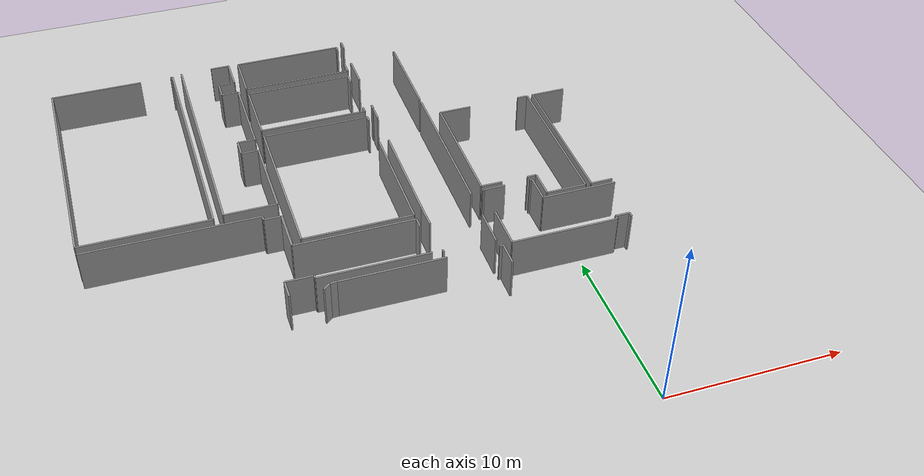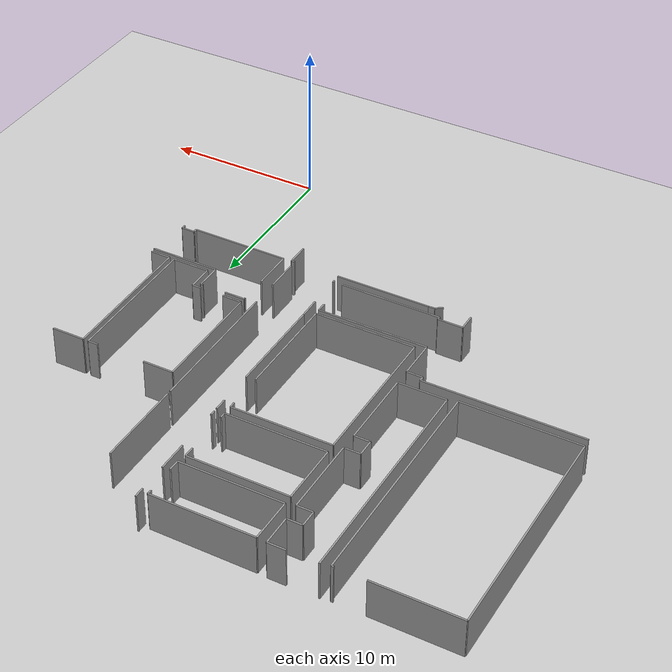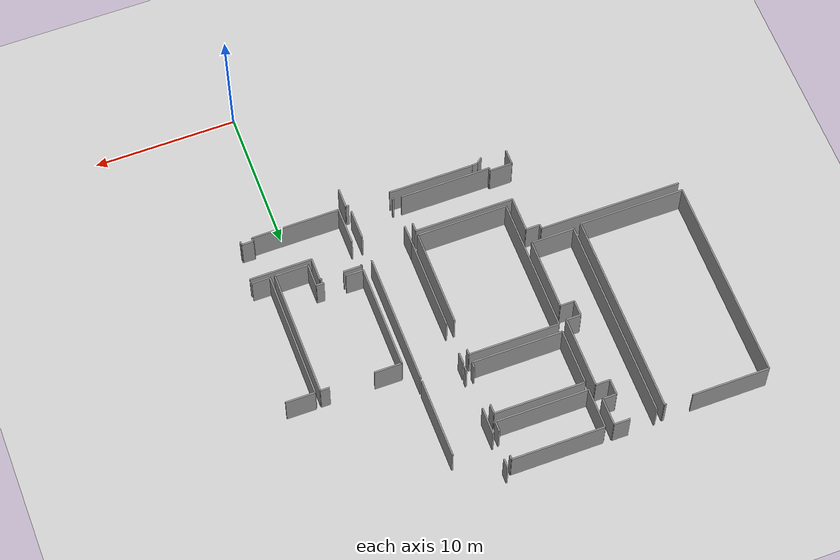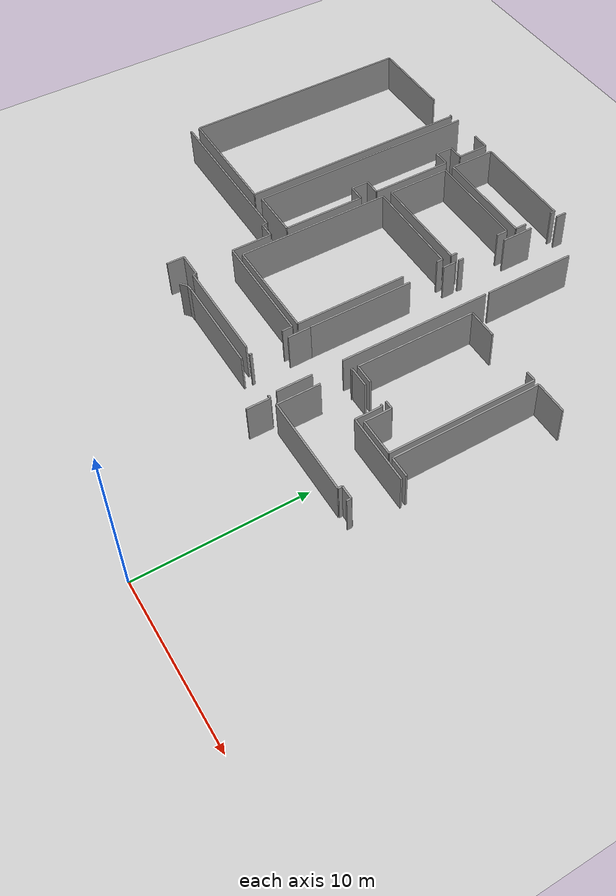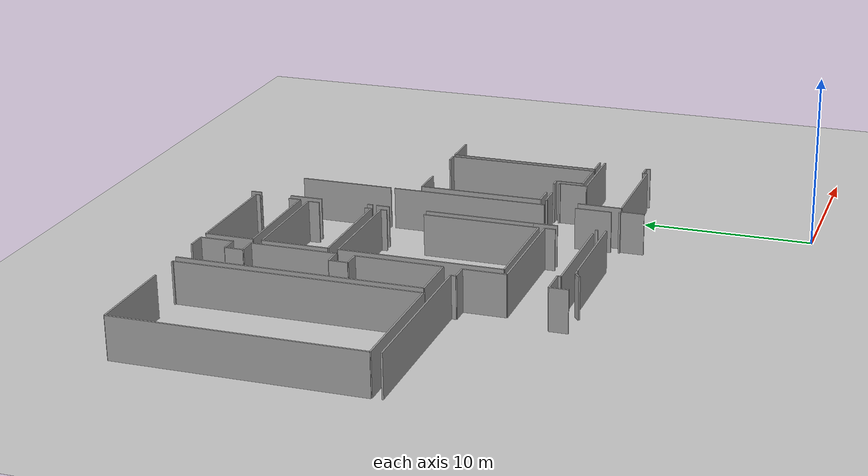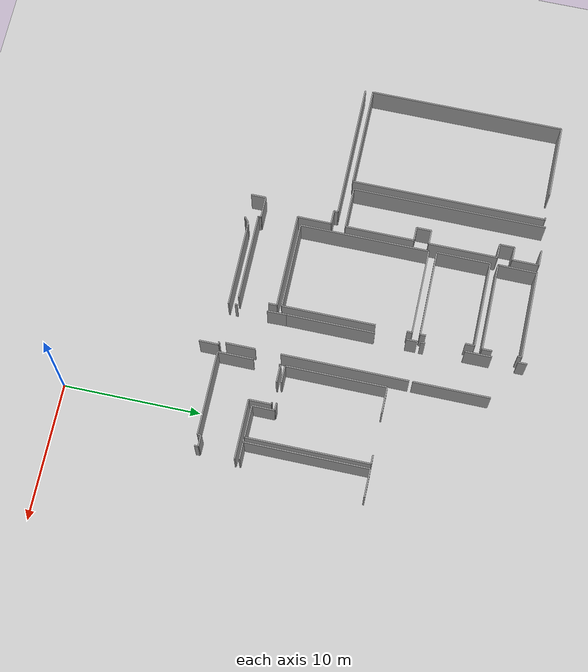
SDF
<sdf version="1.6">
 <world name="default">
  <model name="ground_plane">
   <static>1</static>
   <link name="link">
    <collision name="collision">
     <geometry><plane><normal>0 0 1</normal><size>100 100</size></plane></geometry>
     <surface><friction><ode><mu>100</mu><mu2>50</mu2></ode></friction></surface>
    </collision>
    <visual name="visual">
     <cast_shadows>0</cast_shadows>
     <geometry><plane><normal>0 0 1</normal><size>100 100</size></plane></geometry>
     <material>
      <script><uri>file://media/materials/scripts/gazebo.material</uri><name>Gazebo/Grey</name></script>
     </material>
    </visual>
   </link>
  </model>
  <model name="0510045925_40">
   <static>1</static>
   <link name="Wall_720">
    <collision name="Wall_720_Collision">
     <geometry><box><size>9.99847719601 0.1 2.5</size></box></geometry>
     <pose>4.99923859801 0 1.25 0 0 0</pose>
    </collision>
    <visual name="Wall_720_Visual">
     <pose>4.99923859801 0 1.25 0 0 0</pose>
     <geometry><box><size>9.99847719601 0.1 2.5</size></box></geometry>
     <material>
      <script><uri>file://media/materials/scripts/gazebo.material</uri><name>Gazebo/Grey</name></script>
      <ambient>1 1 1 1</ambient>
     </material>
    </visual>
    <pose>107.627775945 -84.5015862542 0 0 0 0.0</pose>
   </link>
   <link name="Wall_721">
    <collision name="Wall_721_Collision">
     <geometry><box><size>0.301261389305 0.1 2.5</size></box></geometry>
     <pose>0.150630694652 0 1.25 0 0 0</pose>
    </collision>
    <visual name="Wall_721_Visual">
     <pose>0.150630694652 0 1.25 0 0 0</pose>
     <geometry><box><size>0.301261389305 0.1 2.5</size></box></geometry>
     <material>
      <script><uri>file://media/materials/scripts/gazebo.material</uri><name>Gazebo/Grey</name></script>
      <ambient>1 1 1 1</ambient>
     </material>
    </visual>
    <pose>117.626253141 -84.5015862542 0 0 0 -1.57079632679</pose>
   </link>
   <link name="Wall_722">
    <collision name="Wall_722_Collision">
     <geometry><box><size>0.995913809294 0.1 2.5</size></box></geometry>
     <pose>0.497956904647 0 1.25 0 0 0</pose>
    </collision>
    <visual name="Wall_722_Visual">
     <pose>0.497956904647 0 1.25 0 0 0</pose>
     <geometry><box><size>0.995913809294 0.1 2.5</size></box></geometry>
     <material>
      <script><uri>file://media/materials/scripts/gazebo.material</uri><name>Gazebo/Grey</name></script>
      <ambient>1 1 1 1</ambient>
     </material>
    </visual>
    <pose>117.626253141 -84.8028476435 0 0 0 0.0</pose>
   </link>
   <link name="Wall_723">
    <collision name="Wall_723_Collision">
     <geometry><box><size>2.48800791858 0.1 2.5</size></box></geometry>
     <pose>1.24400395929 0 1.25 0 0 0</pose>
    </collision>
    <visual name="Wall_723_Visual">
     <pose>1.24400395929 0 1.25 0 0 0</pose>
     <geometry><box><size>2.48800791858 0.1 2.5</size></box></geometry>
     <material>
      <script><uri>file://media/materials/scripts/gazebo.material</uri><name>Gazebo/Grey</name></script>
      <ambient>1 1 1 1</ambient>
     </material>
    </visual>
    <pose>118.62216695 -84.8028476435 0 0 0 -1.57079632679</pose>
   </link>
   <link name="Wall_724">
    <collision name="Wall_724_Collision">
     <geometry><box><size>6.96175223979 0.1 2.5</size></box></geometry>
     <pose>3.4808761199 0 1.25 0 0 0</pose>
    </collision>
    <visual name="Wall_724_Visual">
     <pose>3.4808761199 0 1.25 0 0 0</pose>
     <geometry><box><size>6.96175223979 0.1 2.5</size></box></geometry>
     <material>
      <script><uri>file://media/materials/scripts/gazebo.material</uri><name>Gazebo/Grey</name></script>
      <ambient>1 1 1 1</ambient>
     </material>
    </visual>
    <pose>118.62216695 -87.290855562 0 0 0 0.0</pose>
   </link>
   <link name="Wall_725">
    <collision name="Wall_725_Collision">
     <geometry><box><size>0.621304027817 0.1 2.5</size></box></geometry>
     <pose>0.310652013908 0 1.25 0 0 0</pose>
    </collision>
    <visual name="Wall_725_Visual">
     <pose>0.310652013908 0 1.25 0 0 0</pose>
     <geometry><box><size>0.621304027817 0.1 2.5</size></box></geometry>
     <material>
      <script><uri>file://media/materials/scripts/gazebo.material</uri><name>Gazebo/Grey</name></script>
      <ambient>1 1 1 1</ambient>
     </material>
    </visual>
    <pose>125.58391919 -87.290855562 0 0 0 -1.57079632679</pose>
   </link>
   <link name="Wall_726">
    <collision name="Wall_726_Collision">
     <geometry><box><size>6.37344229842 0.1 2.5</size></box></geometry>
     <pose>3.18672114921 0 1.25 0 0 0</pose>
    </collision>
    <visual name="Wall_726_Visual">
     <pose>3.18672114921 0 1.25 0 0 0</pose>
     <geometry><box><size>6.37344229842 0.1 2.5</size></box></geometry>
     <material>
      <script><uri>file://media/materials/scripts/gazebo.material</uri><name>Gazebo/Grey</name></script>
      <ambient>1 1 1 1</ambient>
     </material>
    </visual>
    <pose>125.58391919 -90.0920535012 0 0 0 3.14159265359</pose>
   </link>
   <link name="Wall_727">
    <collision name="Wall_727_Collision">
     <geometry><box><size>0.199233521992 0.1 2.5</size></box></geometry>
     <pose>0.0996167609959 0 1.25 0 0 0</pose>
    </collision>
    <visual name="Wall_727_Visual">
     <pose>0.0996167609959 0 1.25 0 0 0</pose>
     <geometry><box><size>0.199233521992 0.1 2.5</size></box></geometry>
     <material>
      <script><uri>file://media/materials/scripts/gazebo.material</uri><name>Gazebo/Grey</name></script>
      <ambient>1 1 1 1</ambient>
     </material>
    </visual>
    <pose>119.210476891 -90.0920535012 0 0 0 1.57079632679</pose>
   </link>
   <link name="Wall_728">
    <collision name="Wall_728_Collision">
     <geometry><box><size>1.57737113271 0.1 2.5</size></box></geometry>
     <pose>0.788685566356 0 1.25 0 0 0</pose>
    </collision>
    <visual name="Wall_728_Visual">
     <pose>0.788685566356 0 1.25 0 0 0</pose>
     <geometry><box><size>1.57737113271 0.1 2.5</size></box></geometry>
     <material>
      <script><uri>file://media/materials/scripts/gazebo.material</uri><name>Gazebo/Grey</name></script>
      <ambient>1 1 1 1</ambient>
     </material>
    </visual>
    <pose>119.210476891 -89.8928199792 0 0 0 3.14159265359</pose>
   </link>
   <link name="Wall_729">
    <collision name="Wall_729_Collision">
     <geometry><box><size>1.07865282607 0.1 2.5</size></box></geometry>
     <pose>0.539326413035 0 1.25 0 0 0</pose>
    </collision>
    <visual name="Wall_729_Visual">
     <pose>0.539326413035 0 1.25 0 0 0</pose>
     <geometry><box><size>1.07865282607 0.1 2.5</size></box></geometry>
     <material>
      <script><uri>file://media/materials/scripts/gazebo.material</uri><name>Gazebo/Grey</name></script>
      <ambient>1 1 1 1</ambient>
     </material>
    </visual>
    <pose>117.633105759 -89.8928199792 0 0 0 -1.57079632679</pose>
   </link>
   <link name="Wall_808">
    <collision name="Wall_808_Collision">
     <geometry><box><size>14.2623283673 0.1 2.5</size></box></geometry>
     <pose>7.13116418365 0 1.25 0 0 0</pose>
    </collision>
    <visual name="Wall_808_Visual">
     <pose>7.13116418365 0 1.25 0 0 0</pose>
     <geometry><box><size>14.2623283673 0.1 2.5</size></box></geometry>
     <material>
      <script><uri>file://media/materials/scripts/gazebo.material</uri><name>Gazebo/Grey</name></script>
      <ambient>1 1 1 1</ambient>
     </material>
    </visual>
    <pose>107.607471892 -83.925204944 0 0 0 1.57079632679</pose>
   </link>
   <link name="Wall_809">
    <collision name="Wall_809_Collision">
     <geometry><box><size>5.41585238953 0.1 2.5</size></box></geometry>
     <pose>2.70792619477 0 1.25 0 0 0</pose>
    </collision>
    <visual name="Wall_809_Visual">
     <pose>2.70792619477 0 1.25 0 0 0</pose>
     <geometry><box><size>5.41585238953 0.1 2.5</size></box></geometry>
     <material>
      <script><uri>file://media/materials/scripts/gazebo.material</uri><name>Gazebo/Grey</name></script>
      <ambient>1 1 1 1</ambient>
     </material>
    </visual>
    <pose>107.607471892 -69.6628765767 0 0 0 0.0</pose>
   </link>
   <link name="Wall_810">
    <collision name="Wall_810_Collision">
     <geometry><box><size>0.140097967057 0.1 2.5</size></box></geometry>
     <pose>0.0700489835284 0 1.25 0 0 0</pose>
    </collision>
    <visual name="Wall_810_Visual">
     <pose>0.0700489835284 0 1.25 0 0 0</pose>
     <geometry><box><size>0.140097967057 0.1 2.5</size></box></geometry>
     <material>
      <script><uri>file://media/materials/scripts/gazebo.material</uri><name>Gazebo/Grey</name></script>
      <ambient>1 1 1 1</ambient>
     </material>
    </visual>
    <pose>114.88165275 -69.6628765767 0 0 0 0.0</pose>
   </link>
   <link name="Wall_811">
    <collision name="Wall_811_Collision">
     <geometry><box><size>14.2653739753 0.1 2.5</size></box></geometry>
     <pose>7.13268698764 0 1.25 0 0 0</pose>
    </collision>
    <visual name="Wall_811_Visual">
     <pose>7.13268698764 0 1.25 0 0 0</pose>
     <geometry><box><size>14.2653739753 0.1 2.5</size></box></geometry>
     <material>
      <script><uri>file://media/materials/scripts/gazebo.material</uri><name>Gazebo/Grey</name></script>
      <ambient>1 1 1 1</ambient>
     </material>
    </visual>
    <pose>115.021750717 -69.6628765767 0 0 0 -1.57079632679</pose>
   </link>
   <link name="Wall_812">
    <collision name="Wall_812_Collision">
     <geometry><box><size>7.41427945094 0.1 2.5</size></box></geometry>
     <pose>3.70713972547 0 1.25 0 0 0</pose>
    </collision>
    <visual name="Wall_812_Visual">
     <pose>3.70713972547 0 1.25 0 0 0</pose>
     <geometry><box><size>7.41427945094 0.1 2.5</size></box></geometry>
     <material>
      <script><uri>file://media/materials/scripts/gazebo.material</uri><name>Gazebo/Grey</name></script>
      <ambient>1 1 1 1</ambient>
     </material>
    </visual>
    <pose>115.021750717 -83.928250552 0 0 0 3.14118187759</pose>
   </link>
   <link name="Wall_813">
    <collision name="Wall_813_Collision">
     <geometry><box><size>14.2270500749 0.1 2.5</size></box></geometry>
     <pose>7.11352503744 0 1.25 0 0 0</pose>
    </collision>
    <visual name="Wall_813_Visual">
     <pose>7.11352503744 0 1.25 0 0 0</pose>
     <geometry><box><size>14.2270500749 0.1 2.5</size></box></geometry>
     <material>
      <script><uri>file://media/materials/scripts/gazebo.material</uri><name>Gazebo/Grey</name></script>
      <ambient>1 1 1 1</ambient>
     </material>
    </visual>
    <pose>115.607522652 -83.7409456613 0 0 0 1.57079632679</pose>
   </link>
   <link name="Wall_814">
    <collision name="Wall_814_Collision">
     <geometry><box><size>1.13017436106 0.1 2.5</size></box></geometry>
     <pose>0.565087180528 0 1.25 0 0 0</pose>
    </collision>
    <visual name="Wall_814_Visual">
     <pose>0.565087180528 0 1.25 0 0 0</pose>
     <geometry><box><size>1.13017436106 0.1 2.5</size></box></geometry>
     <material>
      <script><uri>file://media/materials/scripts/gazebo.material</uri><name>Gazebo/Grey</name></script>
      <ambient>1 1 1 1</ambient>
     </material>
    </visual>
    <pose>117.480317758 -69.5138955864 0 0 0 0.0</pose>
   </link>
   <link name="Wall_815">
    <collision name="Wall_815_Collision">
     <geometry><box><size>1.93852947895 0.1 2.5</size></box></geometry>
     <pose>0.969264739474 0 1.25 0 0 0</pose>
    </collision>
    <visual name="Wall_815_Visual">
     <pose>0.969264739474 0 1.25 0 0 0</pose>
     <geometry><box><size>1.93852947895 0.1 2.5</size></box></geometry>
     <material>
      <script><uri>file://media/materials/scripts/gazebo.material</uri><name>Gazebo/Grey</name></script>
      <ambient>1 1 1 1</ambient>
     </material>
    </visual>
    <pose>118.610492119 -69.5138955864 0 0 0 -1.57079632679</pose>
   </link>
   <link name="Wall_816">
    <collision name="Wall_816_Collision">
     <geometry><box><size>0.977640161417 0.1 2.5</size></box></geometry>
     <pose>0.488820080709 0 1.25 0 0 0</pose>
    </collision>
    <visual name="Wall_816_Visual">
     <pose>0.488820080709 0 1.25 0 0 0</pose>
     <geometry><box><size>0.977640161417 0.1 2.5</size></box></geometry>
     <material>
      <script><uri>file://media/materials/scripts/gazebo.material</uri><name>Gazebo/Grey</name></script>
      <ambient>1 1 1 1</ambient>
     </material>
    </visual>
    <pose>118.610492119 -71.4524250654 0 0 0 3.14159265359</pose>
   </link>
   <link name="Wall_817">
    <collision name="Wall_817_Collision">
     <geometry><box><size>1.07839902541 0.1 2.5</size></box></geometry>
     <pose>0.539199512703 0 1.25 0 0 0</pose>
    </collision>
    <visual name="Wall_817_Visual">
     <pose>0.539199512703 0 1.25 0 0 0</pose>
     <geometry><box><size>1.07839902541 0.1 2.5</size></box></geometry>
     <material>
      <script><uri>file://media/materials/scripts/gazebo.material</uri><name>Gazebo/Grey</name></script>
      <ambient>1 1 1 1</ambient>
     </material>
    </visual>
    <pose>117.632851958 -71.4524250654 0 0 0 -1.57079632679</pose>
   </link>
   <link name="Wall_818">
    <collision name="Wall_818_Collision">
     <geometry><box><size>1.01799446715 0.1 2.5</size></box></geometry>
     <pose>0.508997233573 0 1.25 0 0 0</pose>
    </collision>
    <visual name="Wall_818_Visual">
     <pose>0.508997233573 0 1.25 0 0 0</pose>
     <geometry><box><size>1.01799446715 0.1 2.5</size></box></geometry>
     <material>
      <script><uri>file://media/materials/scripts/gazebo.material</uri><name>Gazebo/Grey</name></script>
      <ambient>1 1 1 1</ambient>
     </material>
    </visual>
    <pose>117.632851958 -72.5308240908 0 0 0 0.0</pose>
   </link>
   <link name="Wall_819">
    <collision name="Wall_819_Collision">
     <geometry><box><size>5.04657242202 0.1 2.5</size></box></geometry>
     <pose>2.52328621101 0 1.25 0 0 0</pose>
    </collision>
    <visual name="Wall_819_Visual">
     <pose>2.52328621101 0 1.25 0 0 0</pose>
     <geometry><box><size>5.04657242202 0.1 2.5</size></box></geometry>
     <material>
      <script><uri>file://media/materials/scripts/gazebo.material</uri><name>Gazebo/Grey</name></script>
      <ambient>1 1 1 1</ambient>
     </material>
    </visual>
    <pose>118.650846425 -72.5308240908 0 0 0 -1.57079632679</pose>
   </link>
   <link name="Wall_820">
    <collision name="Wall_820_Collision">
     <geometry><box><size>1.02357808177 0.1 2.5</size></box></geometry>
     <pose>0.511789040887 0 1.25 0 0 0</pose>
    </collision>
    <visual name="Wall_820_Visual">
     <pose>0.511789040887 0 1.25 0 0 0</pose>
     <geometry><box><size>1.02357808177 0.1 2.5</size></box></geometry>
     <material>
      <script><uri>file://media/materials/scripts/gazebo.material</uri><name>Gazebo/Grey</name></script>
      <ambient>1 1 1 1</ambient>
     </material>
    </visual>
    <pose>118.650846425 -77.5773965128 0 0 0 3.14159265359</pose>
   </link>
   <link name="Wall_821">
    <collision name="Wall_821_Collision">
     <geometry><box><size>1.09185046065 0.1 2.5</size></box></geometry>
     <pose>0.545925230324 0 1.25 0 0 0</pose>
    </collision>
    <visual name="Wall_821_Visual">
     <pose>0.545925230324 0 1.25 0 0 0</pose>
     <geometry><box><size>1.09185046065 0.1 2.5</size></box></geometry>
     <material>
      <script><uri>file://media/materials/scripts/gazebo.material</uri><name>Gazebo/Grey</name></script>
      <ambient>1 1 1 1</ambient>
     </material>
    </visual>
    <pose>117.627268343 -77.5773965128 0 0 0 -1.57079632679</pose>
   </link>
   <link name="Wall_822">
    <collision name="Wall_822_Collision">
     <geometry><box><size>1.0045430319 0.1 2.5</size></box></geometry>
     <pose>0.502271515951 0 1.25 0 0 0</pose>
    </collision>
    <visual name="Wall_822_Visual">
     <pose>0.502271515951 0 1.25 0 0 0</pose>
     <geometry><box><size>1.0045430319 0.1 2.5</size></box></geometry>
     <material>
      <script><uri>file://media/materials/scripts/gazebo.material</uri><name>Gazebo/Grey</name></script>
      <ambient>1 1 1 1</ambient>
     </material>
    </visual>
    <pose>117.627268343 -78.6692469734 0 0 0 0.0</pose>
   </link>
   <link name="Wall_823">
    <collision name="Wall_823_Collision">
     <geometry><box><size>5.06154666125 0.1 2.5</size></box></geometry>
     <pose>2.53077333063 0 1.25 0 0 0</pose>
    </collision>
    <visual name="Wall_823_Visual">
     <pose>2.53077333063 0 1.25 0 0 0</pose>
     <geometry><box><size>5.06154666125 0.1 2.5</size></box></geometry>
     <material>
      <script><uri>file://media/materials/scripts/gazebo.material</uri><name>Gazebo/Grey</name></script>
      <ambient>1 1 1 1</ambient>
     </material>
    </visual>
    <pose>118.631811375 -78.6692469734 0 0 0 -1.57079632679</pose>
   </link>
   <link name="Wall_824">
    <collision name="Wall_824_Collision">
     <geometry><box><size>3.02430576291 0.1 2.5</size></box></geometry>
     <pose>1.51215288145 0 1.25 0 0 0</pose>
    </collision>
    <visual name="Wall_824_Visual">
     <pose>1.51215288145 0 1.25 0 0 0</pose>
     <geometry><box><size>3.02430576291 0.1 2.5</size></box></geometry>
     <material>
      <script><uri>file://media/materials/scripts/gazebo.material</uri><name>Gazebo/Grey</name></script>
      <ambient>1 1 1 1</ambient>
     </material>
    </visual>
    <pose>118.631811375 -83.7307936347 0 0 0 -3.13823583505</pose>
   </link>
   <link name="Wall_825">
    <collision name="Wall_825_Collision">
     <geometry><box><size>3.92274307759 0.1 2.5</size></box></geometry>
     <pose>1.96137153879 0 1.25 0 0 0</pose>
    </collision>
    <visual name="Wall_825_Visual">
     <pose>1.96137153879 0 1.25 0 0 0</pose>
     <geometry><box><size>3.92274307759 0.1 2.5</size></box></geometry>
     <material>
      <script><uri>file://media/materials/scripts/gazebo.material</uri><name>Gazebo/Grey</name></script>
      <ambient>1 1 1 1</ambient>
     </material>
    </visual>
    <pose>119.204639476 -76.8695464582 0 0 0 1.57079632679</pose>
   </link>
   <link name="Wall_826">
    <collision name="Wall_826_Collision">
     <geometry><box><size>6.36760488312 0.1 2.5</size></box></geometry>
     <pose>3.18380244156 0 1.25 0 0 0</pose>
    </collision>
    <visual name="Wall_826_Visual">
     <pose>3.18380244156 0 1.25 0 0 0</pose>
     <geometry><box><size>6.36760488312 0.1 2.5</size></box></geometry>
     <material>
      <script><uri>file://media/materials/scripts/gazebo.material</uri><name>Gazebo/Grey</name></script>
      <ambient>1 1 1 1</ambient>
     </material>
    </visual>
    <pose>119.204639476 -72.9468033806 0 0 0 0.0</pose>
   </link>
   <link name="Wall_827">
    <collision name="Wall_827_Collision">
     <geometry><box><size>0.679678180757 0.1 2.5</size></box></geometry>
     <pose>0.339839090378 0 1.25 0 0 0</pose>
    </collision>
    <visual name="Wall_827_Visual">
     <pose>0.339839090378 0 1.25 0 0 0</pose>
     <geometry><box><size>0.679678180757 0.1 2.5</size></box></geometry>
     <material>
      <script><uri>file://media/materials/scripts/gazebo.material</uri><name>Gazebo/Grey</name></script>
      <ambient>1 1 1 1</ambient>
     </material>
    </visual>
    <pose>125.572244359 -72.9468033806 0 0 0 -1.57079632679</pose>
   </link>
   <link name="Wall_828">
    <collision name="Wall_828_Collision">
     <geometry><box><size>0.395675236669 0.1 2.5</size></box></geometry>
     <pose>0.197837618335 0 1.25 0 0 0</pose>
    </collision>
    <visual name="Wall_828_Visual">
     <pose>0.197837618335 0 1.25 0 0 0</pose>
     <geometry><box><size>0.395675236669 0.1 2.5</size></box></geometry>
     <material>
      <script><uri>file://media/materials/scripts/gazebo.material</uri><name>Gazebo/Grey</name></script>
      <ambient>1 1 1 1</ambient>
     </material>
    </visual>
    <pose>125.572244359 -76.4680338062 0 0 0 -1.57079632679</pose>
   </link>
   <link name="Wall_829">
    <collision name="Wall_829_Collision">
     <geometry><box><size>6.36760755881 0.1 2.5</size></box></geometry>
     <pose>3.1838037794 0 1.25 0 0 0</pose>
    </collision>
    <visual name="Wall_829_Visual">
     <pose>3.1838037794 0 1.25 0 0 0</pose>
     <geometry><box><size>6.36760755881 0.1 2.5</size></box></geometry>
     <material>
      <script><uri>file://media/materials/scripts/gazebo.material</uri><name>Gazebo/Grey</name></script>
      <ambient>1 1 1 1</ambient>
     </material>
    </visual>
    <pose>125.572244359 -76.8637090429 0 0 0 -3.14067591743</pose>
   </link>
   <link name="Wall_846">
    <collision name="Wall_846_Collision">
     <geometry><box><size>5.5841222304 0.1 2.5</size></box></geometry>
     <pose>2.7920611152 0 1.25 0 0 0</pose>
    </collision>
    <visual name="Wall_846_Visual">
     <pose>2.7920611152 0 1.25 0 0 0</pose>
     <geometry><box><size>5.5841222304 0.1 2.5</size></box></geometry>
     <material>
      <script><uri>file://media/materials/scripts/gazebo.material</uri><name>Gazebo/Grey</name></script>
      <ambient>1 1 1 1</ambient>
     </material>
    </visual>
    <pose>129.120885257 -71.1547168854 0 0 0 -1.57079632679</pose>
   </link>
   <link name="Wall_847">
    <collision name="Wall_847_Collision">
     <geometry><box><size>0.327910459125 0.1 2.5</size></box></geometry>
     <pose>0.163955229563 0 1.25 0 0 0</pose>
    </collision>
    <visual name="Wall_847_Visual">
     <pose>0.163955229563 0 1.25 0 0 0</pose>
     <geometry><box><size>0.327910459125 0.1 2.5</size></box></geometry>
     <material>
      <script><uri>file://media/materials/scripts/gazebo.material</uri><name>Gazebo/Grey</name></script>
      <ambient>1 1 1 1</ambient>
     </material>
    </visual>
    <pose>126.140757849 -76.7388391158 0 0 0 1.57079632679</pose>
   </link>
   <link name="Wall_848">
    <collision name="Wall_848_Collision">
     <geometry><box><size>1.9504581102 0.1 2.5</size></box></geometry>
     <pose>0.9752290551 0 1.25 0 0 0</pose>
    </collision>
    <visual name="Wall_848_Visual">
     <pose>0.9752290551 0 1.25 0 0 0</pose>
     <geometry><box><size>1.9504581102 0.1 2.5</size></box></geometry>
     <material>
      <script><uri>file://media/materials/scripts/gazebo.material</uri><name>Gazebo/Grey</name></script>
      <ambient>1 1 1 1</ambient>
     </material>
    </visual>
    <pose>126.140757849 -73.5523717672 0 0 0 1.57079632679</pose>
   </link>
   <link name="Wall_849">
    <collision name="Wall_849_Collision">
     <geometry><box><size>0.656074718916 0.1 2.5</size></box></geometry>
     <pose>0.328037359458 0 1.25 0 0 0</pose>
    </collision>
    <visual name="Wall_849_Visual">
     <pose>0.328037359458 0 1.25 0 0 0</pose>
     <geometry><box><size>0.656074718916 0.1 2.5</size></box></geometry>
     <material>
      <script><uri>file://media/materials/scripts/gazebo.material</uri><name>Gazebo/Grey</name></script>
      <ambient>1 1 1 1</ambient>
     </material>
    </visual>
    <pose>126.140757849 -69.7407933809 0 0 0 1.57079632679</pose>
   </link>
   <link name="Wall_853">
    <collision name="Wall_853_Collision">
     <geometry><box><size>6.48612979366 0.1 2.5</size></box></geometry>
     <pose>3.24306489683 0 1.25 0 0 0</pose>
    </collision>
    <visual name="Wall_853_Visual">
     <pose>3.24306489683 0 1.25 0 0 0</pose>
     <geometry><box><size>6.48612979366 0.1 2.5</size></box></geometry>
     <material>
      <script><uri>file://media/materials/scripts/gazebo.material</uri><name>Gazebo/Grey</name></script>
      <ambient>1 1 1 1</ambient>
     </material>
    </visual>
    <pose>119.215299104 -69.5517118855 0 0 0 0.0</pose>
   </link>
   <link name="Wall_854">
    <collision name="Wall_854_Collision">
     <geometry><box><size>0.288063754727 0.1 2.5</size></box></geometry>
     <pose>0.144031877364 0 1.25 0 0 0</pose>
    </collision>
    <visual name="Wall_854_Visual">
     <pose>0.144031877364 0 1.25 0 0 0</pose>
     <geometry><box><size>0.288063754727 0.1 2.5</size></box></geometry>
     <material>
      <script><uri>file://media/materials/scripts/gazebo.material</uri><name>Gazebo/Grey</name></script>
      <ambient>1 1 1 1</ambient>
     </material>
    </visual>
    <pose>125.701428898 -69.5517118855 0 0 0 -1.57079632679</pose>
   </link>
   <link name="Wall_855">
    <collision name="Wall_855_Collision">
     <geometry><box><size>0.710895662547 0.1 2.5</size></box></geometry>
     <pose>0.355447831273 0 1.25 0 0 0</pose>
    </collision>
    <visual name="Wall_855_Visual">
     <pose>0.355447831273 0 1.25 0 0 0</pose>
     <geometry><box><size>0.710895662547 0.1 2.5</size></box></geometry>
     <material>
      <script><uri>file://media/materials/scripts/gazebo.material</uri><name>Gazebo/Grey</name></script>
      <ambient>1 1 1 1</ambient>
     </material>
    </visual>
    <pose>125.701428898 -71.6696784346 0 0 0 -1.57079632679</pose>
   </link>
   <link name="Wall_856">
    <collision name="Wall_856_Collision">
     <geometry><box><size>6.49704322225 0.1 2.5</size></box></geometry>
     <pose>3.24852161113 0 1.25 0 0 0</pose>
    </collision>
    <visual name="Wall_856_Visual">
     <pose>3.24852161113 0 1.25 0 0 0</pose>
     <geometry><box><size>6.49704322225 0.1 2.5</size></box></geometry>
     <material>
      <script><uri>file://media/materials/scripts/gazebo.material</uri><name>Gazebo/Grey</name></script>
      <ambient>1 1 1 1</ambient>
     </material>
    </visual>
    <pose>125.701428898 -72.3805740971 0 0 0 3.14159265359</pose>
   </link>
   <link name="Wall_857">
    <collision name="Wall_857_Collision">
     <geometry><box><size>2.82888326292 0.1 2.5</size></box></geometry>
     <pose>1.41444163146 0 1.25 0 0 0</pose>
    </collision>
    <visual name="Wall_857_Visual">
     <pose>1.41444163146 0 1.25 0 0 0</pose>
     <geometry><box><size>2.82888326292 0.1 2.5</size></box></geometry>
     <material>
      <script><uri>file://media/materials/scripts/gazebo.material</uri><name>Gazebo/Grey</name></script>
      <ambient>1 1 1 1</ambient>
     </material>
    </visual>
    <pose>119.204385675 -72.3805740971 0 0 0 1.5669384597</pose>
   </link>
   <link name="Wall_858">
    <collision name="Wall_858_Collision">
     <geometry><box><size>9.48960686277 0.1 2.5</size></box></geometry>
     <pose>4.74480343138 0 1.25 0 0 0</pose>
    </collision>
    <visual name="Wall_858_Visual">
     <pose>4.74480343138 0 1.25 0 0 0</pose>
     <geometry><box><size>9.48960686277 0.1 2.5</size></box></geometry>
     <material>
      <script><uri>file://media/materials/scripts/gazebo.material</uri><name>Gazebo/Grey</name></script>
      <ambient>1 1 1 1</ambient>
     </material>
    </visual>
    <pose>119.215299104 -86.9505088703 0 0 0 1.57079632679</pose>
   </link>
   <link name="Wall_859">
    <collision name="Wall_859_Collision">
     <geometry><box><size>6.34704702926 0.1 2.5</size></box></geometry>
     <pose>3.17352351463 0 1.25 0 0 0</pose>
    </collision>
    <visual name="Wall_859_Visual">
     <pose>3.17352351463 0 1.25 0 0 0</pose>
     <geometry><box><size>6.34704702926 0.1 2.5</size></box></geometry>
     <material>
      <script><uri>file://media/materials/scripts/gazebo.material</uri><name>Gazebo/Grey</name></script>
      <ambient>1 1 1 1</ambient>
     </material>
    </visual>
    <pose>119.215299104 -77.4609020076 0 0 0 0.0</pose>
   </link>
   <link name="Wall_860">
    <collision name="Wall_860_Collision">
     <geometry><box><size>0.379431994112 0.1 2.5</size></box></geometry>
     <pose>0.189715997056 0 1.25 0 0 0</pose>
    </collision>
    <visual name="Wall_860_Visual">
     <pose>0.189715997056 0 1.25 0 0 0</pose>
     <geometry><box><size>0.379431994112 0.1 2.5</size></box></geometry>
     <material>
      <script><uri>file://media/materials/scripts/gazebo.material</uri><name>Gazebo/Grey</name></script>
      <ambient>1 1 1 1</ambient>
     </material>
    </visual>
    <pose>125.562346133 -77.4609020076 0 0 0 -1.57079632679</pose>
   </link>
   <link name="Wall_861">
    <collision name="Wall_861_Collision">
     <geometry><box><size>6.82444608005 0.1 2.5</size></box></geometry>
     <pose>3.41222304002 0 1.25 0 0 0</pose>
    </collision>
    <visual name="Wall_861_Visual">
     <pose>3.41222304002 0 1.25 0 0 0</pose>
     <geometry><box><size>6.82444608005 0.1 2.5</size></box></geometry>
     <material>
      <script><uri>file://media/materials/scripts/gazebo.material</uri><name>Gazebo/Grey</name></script>
      <ambient>1 1 1 1</ambient>
     </material>
    </visual>
    <pose>125.562346133 -80.1082967437 0 0 0 -1.57079632679</pose>
   </link>
   <link name="Wall_862">
    <collision name="Wall_862_Collision">
     <geometry><box><size>6.34707189372 0.1 2.5</size></box></geometry>
     <pose>3.17353594686 0 1.25 0 0 0</pose>
    </collision>
    <visual name="Wall_862_Visual">
     <pose>3.17353594686 0 1.25 0 0 0</pose>
     <geometry><box><size>6.34707189372 0.1 2.5</size></box></geometry>
     <material>
      <script><uri>file://media/materials/scripts/gazebo.material</uri><name>Gazebo/Grey</name></script>
      <ambient>1 1 1 1</ambient>
     </material>
    </visual>
    <pose>125.562346133 -86.9327428238 0 0 0 -3.13879355661</pose>
   </link>
   <link name="Wall_863">
    <collision name="Wall_863_Collision">
     <geometry><box><size>6.44120707596 0.1 2.5</size></box></geometry>
     <pose>3.22060353798 0 1.25 0 0 0</pose>
    </collision>
    <visual name="Wall_863_Visual">
     <pose>3.22060353798 0 1.25 0 0 0</pose>
     <geometry><box><size>6.44120707596 0.1 2.5</size></box></geometry>
     <material>
      <script><uri>file://media/materials/scripts/gazebo.material</uri><name>Gazebo/Grey</name></script>
      <ambient>1 1 1 1</ambient>
     </material>
    </visual>
    <pose>126.134920433 -86.4799624375 0 0 0 1.57079632679</pose>
   </link>
   <link name="Wall_864">
    <collision name="Wall_864_Collision">
     <geometry><box><size>0.797695489962 0.1 2.5</size></box></geometry>
     <pose>0.398847744981 0 1.25 0 0 0</pose>
    </collision>
    <visual name="Wall_864_Visual">
     <pose>0.398847744981 0 1.25 0 0 0</pose>
     <geometry><box><size>0.797695489962 0.1 2.5</size></box></geometry>
     <material>
      <script><uri>file://media/materials/scripts/gazebo.material</uri><name>Gazebo/Grey</name></script>
      <ambient>1 1 1 1</ambient>
     </material>
    </visual>
    <pose>126.134920433 -77.7748534301 0 0 0 1.57079632679</pose>
   </link>
   <link name="Wall_865">
    <collision name="Wall_865_Collision">
     <geometry><box><size>9.2424050151 0.1 2.5</size></box></geometry>
     <pose>4.62120250755 0 1.25 0 0 0</pose>
    </collision>
    <visual name="Wall_865_Visual">
     <pose>4.62120250755 0 1.25 0 0 0</pose>
     <geometry><box><size>9.2424050151 0.1 2.5</size></box></geometry>
     <material>
      <script><uri>file://media/materials/scripts/gazebo.material</uri><name>Gazebo/Grey</name></script>
      <ambient>1 1 1 1</ambient>
     </material>
    </visual>
    <pose>129.120885257 -76.9771579402 0 0 0 -1.57079632679</pose>
   </link>
   <link name="Wall_866">
    <collision name="Wall_866_Collision">
     <geometry><box><size>2.15679805081 0.1 2.5</size></box></geometry>
     <pose>1.07839902541 0 1.25 0 0 0</pose>
    </collision>
    <visual name="Wall_866_Visual">
     <pose>1.07839902541 0 1.25 0 0 0</pose>
     <geometry><box><size>2.15679805081 0.1 2.5</size></box></geometry>
     <material>
      <script><uri>file://media/materials/scripts/gazebo.material</uri><name>Gazebo/Grey</name></script>
      <ambient>1 1 1 1</ambient>
     </material>
    </visual>
    <pose>129.120885257 -88.0669779955 0 0 0 -1.57079632679</pose>
   </link>
   <link name="Wall_867">
    <collision name="Wall_867_Collision">
     <geometry><box><size>0.163701428898 0.1 2.5</size></box></geometry>
     <pose>0.0818507144489 0 1.25 0 0 0</pose>
    </collision>
    <visual name="Wall_867_Visual">
     <pose>0.0818507144489 0 1.25 0 0 0</pose>
     <geometry><box><size>0.163701428898 0.1 2.5</size></box></geometry>
     <material>
      <script><uri>file://media/materials/scripts/gazebo.material</uri><name>Gazebo/Grey</name></script>
      <ambient>1 1 1 1</ambient>
     </material>
    </visual>
    <pose>126.163346108 -90.2237760463 0 0 0 1.57079632679</pose>
   </link>
   <link name="Wall_868">
    <collision name="Wall_868_Collision">
     <geometry><box><size>1.3923868336 0.1 2.5</size></box></geometry>
     <pose>0.696193416799 0 1.25 0 0 0</pose>
    </collision>
    <visual name="Wall_868_Visual">
     <pose>0.696193416799 0 1.25 0 0 0</pose>
     <geometry><box><size>1.3923868336 0.1 2.5</size></box></geometry>
     <material>
      <script><uri>file://media/materials/scripts/gazebo.material</uri><name>Gazebo/Grey</name></script>
      <ambient>1 1 1 1</ambient>
     </material>
    </visual>
    <pose>126.163346108 -87.8720590848 0 0 0 1.591212815</pose>
   </link>
   <link name="Wall_875">
    <collision name="Wall_875_Collision">
     <geometry><box><size>0.499589057929 0.1 2.5</size></box></geometry>
     <pose>0.249794528965 0 1.25 0 0 0</pose>
    </collision>
    <visual name="Wall_875_Visual">
     <pose>0.249794528965 0 1.25 0 0 0</pose>
     <geometry><box><size>0.499589057929 0.1 2.5</size></box></geometry>
     <material>
      <script><uri>file://media/materials/scripts/gazebo.material</uri><name>Gazebo/Grey</name></script>
      <ambient>1 1 1 1</ambient>
     </material>
    </visual>
    <pose>119.434836679 -91.0361919748 0 0 0 0.678866593205</pose>
   </link>
   <link name="Wall_876">
    <collision name="Wall_876_Collision">
     <geometry><box><size>0.390326775007 0.1 2.5</size></box></geometry>
     <pose>0.195163387503 0 1.25 0 0 0</pose>
    </collision>
    <visual name="Wall_876_Visual">
     <pose>0.195163387503 0 1.25 0 0 0</pose>
     <geometry><box><size>0.390326775007 0.1 2.5</size></box></geometry>
     <material>
      <script><uri>file://media/materials/scripts/gazebo.material</uri><name>Gazebo/Grey</name></script>
      <ambient>1 1 1 1</ambient>
     </material>
    </visual>
    <pose>119.823659298 -90.7224943529 0 0 0 0.0800633216339</pose>
   </link>
   <link name="Wall_877">
    <collision name="Wall_877_Collision">
     <geometry><box><size>5.99147229766 0.1 2.5</size></box></geometry>
     <pose>2.99573614883 0 1.25 0 0 0</pose>
    </collision>
    <visual name="Wall_877_Visual">
     <pose>2.99573614883 0 1.25 0 0 0</pose>
     <geometry><box><size>5.99147229766 0.1 2.5</size></box></geometry>
     <material>
      <script><uri>file://media/materials/scripts/gazebo.material</uri><name>Gazebo/Grey</name></script>
      <ambient>1 1 1 1</ambient>
     </material>
    </visual>
    <pose>120.212735717 -90.6912768711 0 0 0 0.0</pose>
   </link>
   <link name="Wall_878">
    <collision name="Wall_878_Collision">
     <geometry><box><size>0.20735514327 0.1 2.5</size></box></geometry>
     <pose>0.103677571635 0 1.25 0 0 0</pose>
    </collision>
    <visual name="Wall_878_Visual">
     <pose>0.103677571635 0 1.25 0 0 0</pose>
     <geometry><box><size>0.20735514327 0.1 2.5</size></box></geometry>
     <material>
      <script><uri>file://media/materials/scripts/gazebo.material</uri><name>Gazebo/Grey</name></script>
      <ambient>1 1 1 1</ambient>
     </material>
    </visual>
    <pose>129.138397503 -90.6912768711 0 0 0 0.0</pose>
   </link>
   <link name="Wall_879">
    <collision name="Wall_879_Collision">
     <geometry><box><size>1.41214689982 0.1 2.5</size></box></geometry>
     <pose>0.706073449912 0 1.25 0 0 0</pose>
    </collision>
    <visual name="Wall_879_Visual">
     <pose>0.706073449912 0 1.25 0 0 0</pose>
     <geometry><box><size>1.41214689982 0.1 2.5</size></box></geometry>
     <material>
      <script><uri>file://media/materials/scripts/gazebo.material</uri><name>Gazebo/Grey</name></script>
      <ambient>1 1 1 1</ambient>
     </material>
    </visual>
    <pose>129.345752646 -90.6912768711 0 0 0 -1.57079632679</pose>
   </link>
   <link name="Wall_962">
    <collision name="Wall_962_Collision">
     <geometry><box><size>7.33382401462 0.1 2.5</size></box></geometry>
     <pose>3.66691200731 0 1.25 0 0 0</pose>
    </collision>
    <visual name="Wall_962_Visual">
     <pose>3.66691200731 0 1.25 0 0 0</pose>
     <geometry><box><size>7.33382401462 0.1 2.5</size></box></geometry>
     <material>
      <script><uri>file://media/materials/scripts/gazebo.material</uri><name>Gazebo/Grey</name></script>
      <ambient>1 1 1 1</ambient>
     </material>
    </visual>
    <pose>129.892185478 -85.7373416918 0 0 0 1.57079632679</pose>
   </link>
   <link name="Wall_963">
    <collision name="Wall_963_Collision">
     <geometry><box><size>1.91289561179 0.1 2.5</size></box></geometry>
     <pose>0.956447805893 0 1.25 0 0 0</pose>
    </collision>
    <visual name="Wall_963_Visual">
     <pose>0.956447805893 0 1.25 0 0 0</pose>
     <geometry><box><size>1.91289561179 0.1 2.5</size></box></geometry>
     <material>
      <script><uri>file://media/materials/scripts/gazebo.material</uri><name>Gazebo/Grey</name></script>
      <ambient>1 1 1 1</ambient>
     </material>
    </visual>
    <pose>129.892185478 -78.4035176772 0 0 0 0.0</pose>
   </link>
   <link name="Wall_964">
    <collision name="Wall_964_Collision">
     <geometry><box><size>0.635516865054 0.1 2.5</size></box></geometry>
     <pose>0.317758432527 0 1.25 0 0 0</pose>
    </collision>
    <visual name="Wall_964_Visual">
     <pose>0.317758432527 0 1.25 0 0 0</pose>
     <geometry><box><size>0.635516865054 0.1 2.5</size></box></geometry>
     <material>
      <script><uri>file://media/materials/scripts/gazebo.material</uri><name>Gazebo/Grey</name></script>
      <ambient>1 1 1 1</ambient>
     </material>
    </visual>
    <pose>134.907540418 -78.4035176772 0 0 0 0.0</pose>
   </link>
   <link name="Wall_965">
    <collision name="Wall_965_Collision">
     <geometry><box><size>8.98378213751 0.1 2.5</size></box></geometry>
     <pose>4.49189106875 0 1.25 0 0 0</pose>
    </collision>
    <visual name="Wall_965_Visual">
     <pose>4.49189106875 0 1.25 0 0 0</pose>
     <geometry><box><size>8.98378213751 0.1 2.5</size></box></geometry>
     <material>
      <script><uri>file://media/materials/scripts/gazebo.material</uri><name>Gazebo/Grey</name></script>
      <ambient>1 1 1 1</ambient>
     </material>
    </visual>
    <pose>135.543057283 -78.4035176772 0 0 0 -1.57079632679</pose>
   </link>
   <link name="Wall_966">
    <collision name="Wall_966_Collision">
     <geometry><box><size>2.33420471562 0.1 2.5</size></box></geometry>
     <pose>1.16710235781 0 1.25 0 0 0</pose>
    </collision>
    <visual name="Wall_966_Visual">
     <pose>1.16710235781 0 1.25 0 0 0</pose>
     <geometry><box><size>2.33420471562 0.1 2.5</size></box></geometry>
     <material>
      <script><uri>file://media/materials/scripts/gazebo.material</uri><name>Gazebo/Grey</name></script>
      <ambient>1 1 1 1</ambient>
     </material>
    </visual>
    <pose>135.543057283 -87.3872998147 0 0 0 3.14159265359</pose>
   </link>
   <link name="Wall_967">
    <collision name="Wall_967_Collision">
     <geometry><box><size>1.64183650161 0.1 2.5</size></box></geometry>
     <pose>0.820918250806 0 1.25 0 0 0</pose>
    </collision>
    <visual name="Wall_967_Visual">
     <pose>0.820918250806 0 1.25 0 0 0</pose>
     <geometry><box><size>1.64183650161 0.1 2.5</size></box></geometry>
     <material>
      <script><uri>file://media/materials/scripts/gazebo.material</uri><name>Gazebo/Grey</name></script>
      <ambient>1 1 1 1</ambient>
     </material>
    </visual>
    <pose>133.208852567 -87.3872998147 0 0 0 1.57079632679</pose>
   </link>
   <link name="Wall_968">
    <collision name="Wall_968_Collision">
     <geometry><box><size>0.54161061902 0.1 2.5</size></box></geometry>
     <pose>0.27080530951 0 1.25 0 0 0</pose>
    </collision>
    <visual name="Wall_968_Visual">
     <pose>0.27080530951 0 1.25 0 0 0</pose>
     <geometry><box><size>0.54161061902 0.1 2.5</size></box></geometry>
     <material>
      <script><uri>file://media/materials/scripts/gazebo.material</uri><name>Gazebo/Grey</name></script>
      <ambient>1 1 1 1</ambient>
     </material>
    </visual>
    <pose>133.208852567 -85.7454633131 0 0 0 3.14159265359</pose>
   </link>
   <link name="Wall_969">
    <collision name="Wall_969_Collision">
     <geometry><box><size>1.2482180925 0.1 2.5</size></box></geometry>
     <pose>0.62410904625 0 1.25 0 0 0</pose>
    </collision>
    <visual name="Wall_969_Visual">
     <pose>0.62410904625 0 1.25 0 0 0</pose>
     <geometry><box><size>1.2482180925 0.1 2.5</size></box></geometry>
     <material>
      <script><uri>file://media/materials/scripts/gazebo.material</uri><name>Gazebo/Grey</name></script>
      <ambient>1 1 1 1</ambient>
     </material>
    </visual>
    <pose>131.140377148 -85.7454633131 0 0 0 3.13508603537</pose>
   </link>
   <link name="Wall_970">
    <collision name="Wall_970_Collision">
     <geometry><box><size>9.00154818406 0.1 2.5</size></box></geometry>
     <pose>4.50077409203 0 1.25 0 0 0</pose>
    </collision>
    <visual name="Wall_970_Visual">
     <pose>4.50077409203 0 1.25 0 0 0</pose>
     <geometry><box><size>9.00154818406 0.1 2.5</size></box></geometry>
     <material>
      <script><uri>file://media/materials/scripts/gazebo.material</uri><name>Gazebo/Grey</name></script>
      <ambient>1 1 1 1</ambient>
     </material>
    </visual>
    <pose>135.888479988 -87.3964366387 0 0 0 1.57079632679</pose>
   </link>
   <link name="Wall_971">
    <collision name="Wall_971_Collision">
     <geometry><box><size>2.05502398416 0.1 2.5</size></box></geometry>
     <pose>1.02751199208 0 1.25 0 0 0</pose>
    </collision>
    <visual name="Wall_971_Visual">
     <pose>1.02751199208 0 1.25 0 0 0</pose>
     <geometry><box><size>2.05502398416 0.1 2.5</size></box></geometry>
     <material>
      <script><uri>file://media/materials/scripts/gazebo.material</uri><name>Gazebo/Grey</name></script>
      <ambient>1 1 1 1</ambient>
     </material>
    </visual>
    <pose>135.888479988 -78.3948884546 0 0 0 0.0</pose>
   </link>
   <link name="Wall_975">
    <collision name="Wall_975_Collision">
     <geometry><box><size>1.27665004071 0.1 2.5</size></box></geometry>
     <pose>0.638325020353 0 1.25 0 0 0</pose>
    </collision>
    <visual name="Wall_975_Visual">
     <pose>0.638325020353 0 1.25 0 0 0</pose>
     <geometry><box><size>1.27665004071 0.1 2.5</size></box></geometry>
     <material>
      <script><uri>file://media/materials/scripts/gazebo.material</uri><name>Gazebo/Grey</name></script>
      <ambient>1 1 1 1</ambient>
     </material>
    </visual>
    <pose>137.165097333 -87.3872998147 0 0 0 -3.13443571814</pose>
   </link>
   <link name="Wall_982">
    <collision name="Wall_982_Collision">
     <geometry><box><size>2.60907083577 0.1 2.5</size></box></geometry>
     <pose>1.30453541788 0 1.25 0 0 0</pose>
    </collision>
    <visual name="Wall_982_Visual">
     <pose>1.30453541788 0 1.25 0 0 0</pose>
     <geometry><box><size>2.60907083577 0.1 2.5</size></box></geometry>
     <material>
      <script><uri>file://media/materials/scripts/gazebo.material</uri><name>Gazebo/Grey</name></script>
      <ambient>1 1 1 1</ambient>
     </material>
    </visual>
    <pose>129.880256846 -90.6285881069 0 0 0 1.57079632679</pose>
   </link>
   <link name="Wall_983">
    <collision name="Wall_983_Collision">
     <geometry><box><size>0.102789269308 0.1 2.5</size></box></geometry>
     <pose>0.0513946346539 0 1.25 0 0 0</pose>
    </collision>
    <visual name="Wall_983_Visual">
     <pose>0.0513946346539 0 1.25 0 0 0</pose>
     <geometry><box><size>0.102789269308 0.1 2.5</size></box></geometry>
     <material>
      <script><uri>file://media/materials/scripts/gazebo.material</uri><name>Gazebo/Grey</name></script>
      <ambient>1 1 1 1</ambient>
     </material>
    </visual>
    <pose>129.880256846 -86.1766706429 0 0 0 1.57079632679</pose>
   </link>
   <link name="Wall_984">
    <collision name="Wall_984_Collision">
     <geometry><box><size>1.3073272252 0.1 2.5</size></box></geometry>
     <pose>0.653663612599 0 1.25 0 0 0</pose>
    </collision>
    <visual name="Wall_984_Visual">
     <pose>0.653663612599 0 1.25 0 0 0</pose>
     <geometry><box><size>1.3073272252 0.1 2.5</size></box></geometry>
     <material>
      <script><uri>file://media/materials/scripts/gazebo.material</uri><name>Gazebo/Grey</name></script>
      <ambient>1 1 1 1</ambient>
     </material>
    </visual>
    <pose>129.880256846 -86.0738813736 0 0 0 0.0</pose>
   </link>
   <link name="Wall_985">
    <collision name="Wall_985_Collision">
     <geometry><box><size>0.143397375701 0.1 2.5</size></box></geometry>
     <pose>0.0716986878506 0 1.25 0 0 0</pose>
    </collision>
    <visual name="Wall_985_Visual">
     <pose>0.0716986878506 0 1.25 0 0 0</pose>
     <geometry><box><size>0.143397375701 0.1 2.5</size></box></geometry>
     <material>
      <script><uri>file://media/materials/scripts/gazebo.material</uri><name>Gazebo/Grey</name></script>
      <ambient>1 1 1 1</ambient>
     </material>
    </visual>
    <pose>132.695921423 -86.0738813736 0 0 0 0.0</pose>
   </link>
   <link name="Wall_986">
    <collision name="Wall_986_Collision">
     <geometry><box><size>1.63523768432 0.1 2.5</size></box></geometry>
     <pose>0.817618842161 0 1.25 0 0 0</pose>
    </collision>
    <visual name="Wall_986_Visual">
     <pose>0.817618842161 0 1.25 0 0 0</pose>
     <geometry><box><size>1.63523768432 0.1 2.5</size></box></geometry>
     <material>
      <script><uri>file://media/materials/scripts/gazebo.material</uri><name>Gazebo/Grey</name></script>
      <ambient>1 1 1 1</ambient>
     </material>
    </visual>
    <pose>132.839318799 -86.0738813736 0 0 0 -1.57079632679</pose>
   </link>
   <link name="Wall_987">
    <collision name="Wall_987_Collision">
     <geometry><box><size>4.356488414 0.1 2.5</size></box></geometry>
     <pose>2.178244207 0 1.25 0 0 0</pose>
    </collision>
    <visual name="Wall_987_Visual">
     <pose>2.178244207 0 1.25 0 0 0</pose>
     <geometry><box><size>4.356488414 0.1 2.5</size></box></geometry>
     <material>
      <script><uri>file://media/materials/scripts/gazebo.material</uri><name>Gazebo/Grey</name></script>
      <ambient>1 1 1 1</ambient>
     </material>
    </visual>
    <pose>132.839318799 -87.7091190579 0 0 0 0.0</pose>
   </link>
   <link name="Wall_1000">
    <collision name="Wall_1000_Collision">
     <geometry><box><size>0.275119920814 0.1 2.5</size></box></geometry>
     <pose>0.137559960407 0 1.25 0 0 0</pose>
    </collision>
    <visual name="Wall_1000_Visual">
     <pose>0.137559960407 0 1.25 0 0 0</pose>
     <geometry><box><size>0.275119920814 0.1 2.5</size></box></geometry>
     <material>
      <script><uri>file://media/materials/scripts/gazebo.material</uri><name>Gazebo/Grey</name></script>
      <ambient>1 1 1 1</ambient>
     </material>
    </visual>
    <pose>136.863074541 -90.6471155554 0 0 0 1.57079632679</pose>
   </link>
   <link name="Wall_1001">
    <collision name="Wall_1001_Collision">
     <geometry><box><size>0.831450978402 0.1 2.5</size></box></geometry>
     <pose>0.415725489201 0 1.25 0 0 0</pose>
    </collision>
    <visual name="Wall_1001_Visual">
     <pose>0.415725489201 0 1.25 0 0 0</pose>
     <geometry><box><size>0.831450978402 0.1 2.5</size></box></geometry>
     <material>
      <script><uri>file://media/materials/scripts/gazebo.material</uri><name>Gazebo/Grey</name></script>
      <ambient>1 1 1 1</ambient>
     </material>
    </visual>
    <pose>136.863074541 -90.3719956346 0 0 0 3.14159265359</pose>
   </link>
   <link name="Wall_1002">
    <collision name="Wall_1002_Collision">
     <geometry><box><size>0.246694246339 0.1 2.5</size></box></geometry>
     <pose>0.123347123169 0 1.25 0 0 0</pose>
    </collision>
    <visual name="Wall_1002_Visual">
     <pose>0.123347123169 0 1.25 0 0 0</pose>
     <geometry><box><size>0.246694246339 0.1 2.5</size></box></geometry>
     <material>
      <script><uri>file://media/materials/scripts/gazebo.material</uri><name>Gazebo/Grey</name></script>
      <ambient>1 1 1 1</ambient>
     </material>
    </visual>
    <pose>136.031623563 -90.3719956346 0 0 0 -1.57079632679</pose>
   </link>
   <link name="Wall_1003">
    <collision name="Wall_1003_Collision">
     <geometry><box><size>6.15137468024 0.1 2.5</size></box></geometry>
     <pose>3.07568734012 0 1.25 0 0 0</pose>
    </collision>
    <visual name="Wall_1003_Visual">
     <pose>3.07568734012 0 1.25 0 0 0</pose>
     <geometry><box><size>6.15137468024 0.1 2.5</size></box></geometry>
     <material>
      <script><uri>file://media/materials/scripts/gazebo.material</uri><name>Gazebo/Grey</name></script>
      <ambient>1 1 1 1</ambient>
     </material>
    </visual>
    <pose>136.031623563 -90.618689881 0 0 0 -3.13998354494</pose>
   </link>
   <pose>-133.95 101.083118449 0 0 0 0</pose>
  </model>
 </world>
</sdf>
